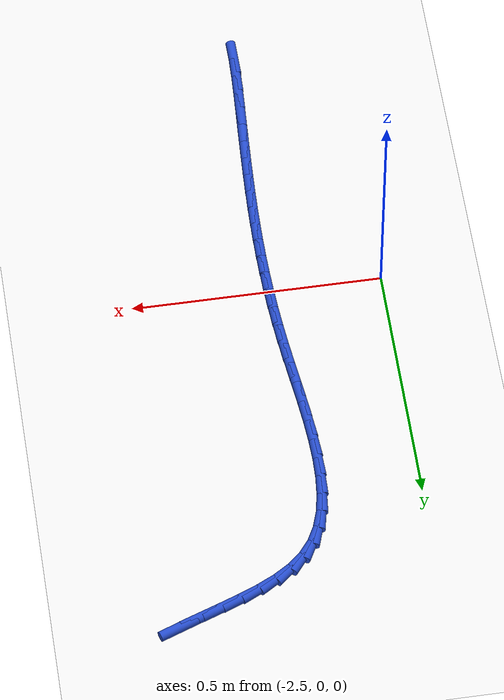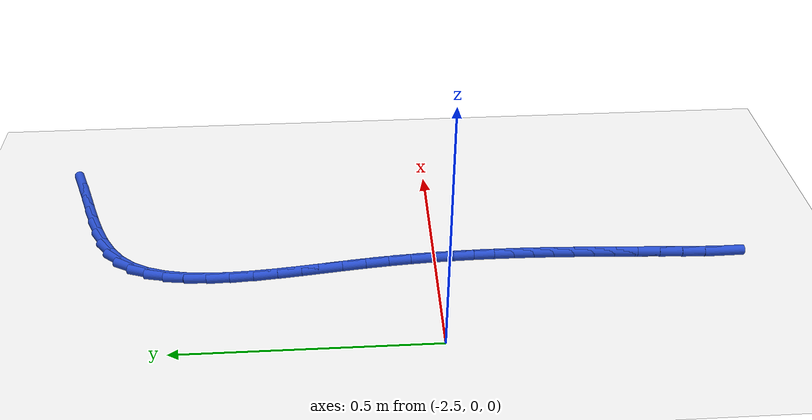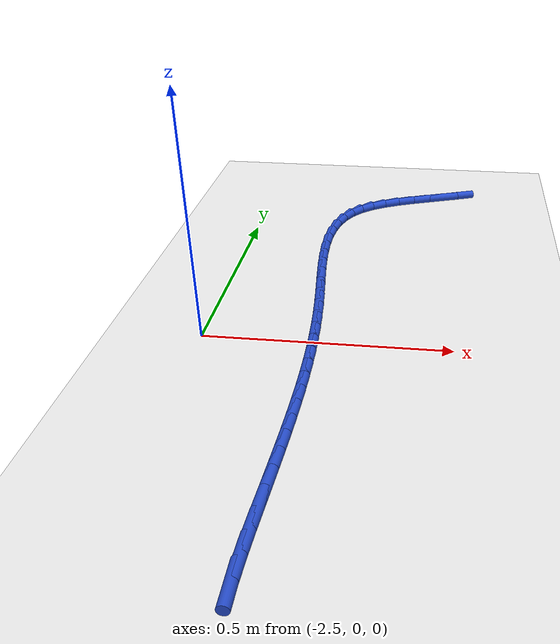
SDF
<sdf version="1.6">
 <world name="default">
  <model name="ground_plane">
   <static>1</static>
   <link name="link">
    <collision name="collision">
     <geometry><plane><normal>0 0 1</normal><size>100 100</size></plane></geometry>
     <surface><friction><ode><mu>100</mu><mu2>50</mu2></ode></friction></surface>
    </collision>
    <visual name="visual">
     <cast_shadows>0</cast_shadows>
     <geometry><plane><normal>0 0 1</normal><size>100 100</size></plane></geometry>
     <material>
      <script><uri>file://media/materials/scripts/gazebo.material</uri><name>Gazebo/WhiteGlow</name></script>
     </material>
    </visual>
   </link>
  </model>
  <model name="line">
   <link name="link_93">
    <pose>-1.9919386702595403 0.7402794051506635 0.01 0 1.57 0.3583059687442296</pose>
    <collision name="collision">
     <geometry><cylinder><radius>0.01</radius><length>0.08</length></cylinder></geometry>
    </collision>
    <visual name="visual">
     <material>
      <script><name>Gazebo/Blue</name><uri>file://media/materials/scripts/gazebo.material</uri></script>
     </material>
     <geometry><cylinder><radius>0.01</radius><length>0.08</length></cylinder></geometry>
    </visual>
   </link>
   <link name="link_94">
    <pose>-2.0347354058784446 0.7242533097601925 0.01 0 1.57 0.3448046574684909</pose>
    <collision name="collision">
     <geometry><cylinder><radius>0.01</radius><length>0.08</length></cylinder></geometry>
    </collision>
    <visual name="visual">
     <material>
      <script><name>Gazebo/Blue</name><uri>file://media/materials/scripts/gazebo.material</uri></script>
     </material>
     <geometry><cylinder><radius>0.01</radius><length>0.08</length></cylinder></geometry>
    </visual>
   </link>
   <link name="link_95">
    <pose>-2.0766841835661083 0.7091873229292416 0.01 0 1.57 0.3544680695239669</pose>
    <collision name="collision">
     <geometry><cylinder><radius>0.01</radius><length>0.08</length></cylinder></geometry>
    </collision>
    <visual name="visual">
     <material>
      <script><name>Gazebo/Blue</name><uri>file://media/materials/scripts/gazebo.material</uri></script>
     </material>
     <geometry><cylinder><radius>0.01</radius><length>0.08</length></cylinder></geometry>
    </visual>
   </link>
   <link name="link_96">
    <pose>-2.117054214678481 0.6942463654742291 0.01 0 1.57 0.39013604898697773</pose>
    <collision name="collision">
     <geometry><cylinder><radius>0.01</radius><length>0.08</length></cylinder></geometry>
    </collision>
    <visual name="visual">
     <material>
      <script><name>Gazebo/Blue</name><uri>file://media/materials/scripts/gazebo.material</uri></script>
     </material>
     <geometry><cylinder><radius>0.01</radius><length>0.08</length></cylinder></geometry>
    </visual>
   </link>
   <link name="link_97">
    <pose>-2.1551147105715165 0.678595358211574 0.01 0 1.57 0.4564500618635844</pose>
    <collision name="collision">
     <geometry><cylinder><radius>0.01</radius><length>0.08</length></cylinder></geometry>
    </collision>
    <visual name="visual">
     <material>
      <script><name>Gazebo/Blue</name><uri>file://media/materials/scripts/gazebo.material</uri></script>
     </material>
     <geometry><cylinder><radius>0.01</radius><length>0.08</length></cylinder></geometry>
    </visual>
   </link>
   <link name="link_98">
    <pose>-2.1901348826011655 0.6613992219576941 0.01 0 1.57 0.559649860873355</pose>
    <collision name="collision">
     <geometry><cylinder><radius>0.01</radius><length>0.08</length></cylinder></geometry>
    </collision>
    <visual name="visual">
     <material>
      <script><name>Gazebo/Blue</name><uri>file://media/materials/scripts/gazebo.material</uri></script>
     </material>
     <geometry><cylinder><radius>0.01</radius><length>0.08</length></cylinder></geometry>
    </visual>
   </link>
   <link name="link_99">
    <pose>-2.221383942123379 0.6418228775290078 0.01 0 1.57 0.7057201502779105</pose>
    <collision name="collision">
     <geometry><cylinder><radius>0.01</radius><length>0.08</length></cylinder></geometry>
    </collision>
    <visual name="visual">
     <material>
      <script><name>Gazebo/Blue</name><uri>file://media/materials/scripts/gazebo.material</uri></script>
     </material>
     <geometry><cylinder><radius>0.01</radius><length>0.08</length></cylinder></geometry>
    </visual>
   </link>
   <link name="link_100">
    <pose>-2.24813110049411 0.6190312457419334 0.01 0 1.57 0.8939104555666194</pose>
    <collision name="collision">
     <geometry><cylinder><radius>0.01</radius><length>0.08</length></cylinder></geometry>
    </collision>
    <visual name="visual">
     <material>
      <script><name>Gazebo/Blue</name><uri>file://media/materials/scripts/gazebo.material</uri></script>
     </material>
     <geometry><cylinder><radius>0.01</radius><length>0.08</length></cylinder></geometry>
    </visual>
   </link>
   <link name="link_101">
    <pose>-2.2696749942277497 0.5922194755579575 0.01 0 1.57 1.0871001460074077</pose>
    <collision name="collision">
     <geometry><cylinder><radius>0.01</radius><length>0.08</length></cylinder></geometry>
    </collision>
    <visual name="visual">
     <material>
      <script><name>Gazebo/Blue</name><uri>file://media/materials/scripts/gazebo.material</uri></script>
     </material>
     <geometry><cylinder><radius>0.01</radius><length>0.08</length></cylinder></geometry>
    </visual>
   </link>
   <link name="link_102">
    <pose>-2.285950825552169 0.56123665296903 0.01 0 1.57 1.249038075036579</pose>
    <collision name="collision">
     <geometry><cylinder><radius>0.01</radius><length>0.08</length></cylinder></geometry>
    </collision>
    <visual name="visual">
     <material>
      <script><name>Gazebo/Blue</name><uri>file://media/materials/scripts/gazebo.material</uri></script>
     </material>
     <geometry><cylinder><radius>0.01</radius><length>0.08</length></cylinder></geometry>
    </visual>
   </link>
   <link name="link_103">
    <pose>-2.2975087923257975 0.5265636422861057 0.01 0 1.57 1.3773636294302942</pose>
    <collision name="collision">
     <geometry><cylinder><radius>0.01</radius><length>0.08</length></cylinder></geometry>
    </collision>
    <visual name="visual">
     <material>
      <script><name>Gazebo/Blue</name><uri>file://media/materials/scripts/gazebo.material</uri></script>
     </material>
     <geometry><cylinder><radius>0.01</radius><length>0.08</length></cylinder></geometry>
    </visual>
   </link>
   <link name="link_104">
    <pose>-2.304924201941774 0.4887071025719075 0.01 0 1.57 1.4761420509970498</pose>
    <collision name="collision">
     <geometry><cylinder><radius>0.01</radius><length>0.08</length></cylinder></geometry>
    </collision>
    <visual name="visual">
     <material>
      <script><name>Gazebo/Blue</name><uri>file://media/materials/scripts/gazebo.material</uri></script>
     </material>
     <geometry><cylinder><radius>0.01</radius><length>0.08</length></cylinder></geometry>
    </visual>
   </link>
   <link name="link_105">
    <pose>-2.3087723617932356 0.4481736928891597 0.01 0 1.57 1.5507487814240661</pose>
    <collision name="collision">
     <geometry><cylinder><radius>0.01</radius><length>0.08</length></cylinder></geometry>
    </collision>
    <visual name="visual">
     <material>
      <script><name>Gazebo/Blue</name><uri>file://media/materials/scripts/gazebo.material</uri></script>
     </material>
     <geometry><cylinder><radius>0.01</radius><length>0.08</length></cylinder></geometry>
    </visual>
   </link>
   <link name="link_106">
    <pose>-2.309628579273322 0.405470072300585 0.01 0 1.57 -1.535640275715617</pose>
    <collision name="collision">
     <geometry><cylinder><radius>0.01</radius><length>0.08</length></cylinder></geometry>
    </collision>
    <visual name="visual">
     <material>
      <script><name>Gazebo/Blue</name><uri>file://media/materials/scripts/gazebo.material</uri></script>
     </material>
     <geometry><cylinder><radius>0.01</radius><length>0.08</length></cylinder></geometry>
    </visual>
   </link>
   <link name="link_107">
    <pose>-2.3080681617751706 0.36110289986890787 0.01 0 1.57 -1.4962108353072543</pose>
    <collision name="collision">
     <geometry><cylinder><radius>0.01</radius><length>0.08</length></cylinder></geometry>
    </collision>
    <visual name="visual">
     <material>
      <script><name>Gazebo/Blue</name><uri>file://media/materials/scripts/gazebo.material</uri></script>
     </material>
     <geometry><cylinder><radius>0.01</radius><length>0.08</length></cylinder></geometry>
    </visual>
   </link>
   <link name="link_108">
    <pose>-2.3046664166919193 0.31557883465685094 0.01 0 1.57 -1.4700484675700716</pose>
    <collision name="collision">
     <geometry><cylinder><radius>0.01</radius><length>0.08</length></cylinder></geometry>
    </collision>
    <visual name="visual">
     <material>
      <script><name>Gazebo/Blue</name><uri>file://media/materials/scripts/gazebo.material</uri></script>
     </material>
     <geometry><cylinder><radius>0.01</radius><length>0.08</length></cylinder></geometry>
    </visual>
   </link>
   <link name="link_109">
    <pose>-2.2999986514167077 0.2694045357271387 0.01 0 1.57 -1.455619141936522</pose>
    <collision name="collision">
     <geometry><cylinder><radius>0.01</radius><length>0.08</length></cylinder></geometry>
    </collision>
    <visual name="visual">
     <material>
      <script><name>Gazebo/Blue</name><uri>file://media/materials/scripts/gazebo.material</uri></script>
     </material>
     <geometry><cylinder><radius>0.01</radius><length>0.08</length></cylinder></geometry>
    </visual>
   </link>
   <link name="link_110">
    <pose>-2.294640173342673 0.22308666214249367 0.01 0 1.57 -1.4522403843897254</pose>
    <collision name="collision">
     <geometry><cylinder><radius>0.01</radius><length>0.08</length></cylinder></geometry>
    </collision>
    <visual name="visual">
     <material>
      <script><name>Gazebo/Blue</name><uri>file://media/materials/scripts/gazebo.material</uri></script>
     </material>
     <geometry><cylinder><radius>0.01</radius><length>0.08</length></cylinder></geometry>
    </visual>
   </link>
   <link name="link_111">
    <pose>-2.289166289862955 0.17713187296564062 0.01 0 1.57 -1.4600312226867516</pose>
    <collision name="collision">
     <geometry><cylinder><radius>0.01</radius><length>0.08</length></cylinder></geometry>
    </collision>
    <visual name="visual">
     <material>
      <script><name>Gazebo/Blue</name><uri>file://media/materials/scripts/gazebo.material</uri></script>
     </material>
     <geometry><cylinder><radius>0.01</radius><length>0.08</length></cylinder></geometry>
    </visual>
   </link>
   <link name="link_112">
    <pose>-2.284151863925909 0.13204635612402604 0.01 0 1.57 -1.4766299716597</pose>
    <collision name="collision">
     <geometry><cylinder><radius>0.01</radius><length>0.08</length></cylinder></geometry>
    </collision>
    <visual name="visual">
     <material>
      <script><name>Gazebo/Blue</name><uri>file://media/materials/scripts/gazebo.material</uri></script>
     </material>
     <geometry><cylinder><radius>0.01</radius><length>0.08</length></cylinder></geometry>
    </visual>
   </link>
   <link name="link_113">
    <pose>-2.2800071585937687 0.08816181484856449 0.01 0 1.57 -1.494410431124753</pose>
    <collision name="collision">
     <geometry><cylinder><radius>0.01</radius><length>0.08</length></cylinder></geometry>
    </collision>
    <visual name="visual">
     <material>
      <script><name>Gazebo/Blue</name><uri>file://media/materials/scripts/gazebo.material</uri></script>
     </material>
     <geometry><cylinder><radius>0.01</radius><length>0.08</length></cylinder></geometry>
    </visual>
   </link>
   <link name="link_114">
    <pose>-2.2767325090365174 0.04537540684547859 0.01 0 1.57 -1.5119263965669993</pose>
    <collision name="collision">
     <geometry><cylinder><radius>0.01</radius><length>0.08</length></cylinder></geometry>
    </collision>
    <visual name="visual">
     <material>
      <script><name>Gazebo/Blue</name><uri>file://media/materials/scripts/gazebo.material</uri></script>
     </material>
     <geometry><cylinder><radius>0.01</radius><length>0.08</length></cylinder></geometry>
    </visual>
   </link>
   <link name="link_115">
    <pose>-2.2742655024896177 0.003517773649139571 0.01 0 1.57 -1.5289266258049818</pose>
    <collision name="collision">
     <geometry><cylinder><radius>0.01</radius><length>0.08</length></cylinder></geometry>
    </collision>
    <visual name="visual">
     <material>
      <script><name>Gazebo/Blue</name><uri>file://media/materials/scripts/gazebo.material</uri></script>
     </material>
     <geometry><cylinder><radius>0.01</radius><length>0.08</length></cylinder></geometry>
    </visual>
   </link>
   <link name="link_116">
    <pose>-2.272543726188535 -0.03758044320608448 0.01 0 1.57 -1.5451538113739467</pose>
    <collision name="collision">
     <geometry><cylinder><radius>0.01</radius><length>0.08</length></cylinder></geometry>
    </collision>
    <visual name="visual">
     <material>
      <script><name>Gazebo/Blue</name><uri>file://media/materials/scripts/gazebo.material</uri></script>
     </material>
     <geometry><cylinder><radius>0.01</radius><length>0.08</length></cylinder></geometry>
    </visual>
   </link>
   <link name="link_117">
    <pose>-2.2715047673687314 -0.07808860218582442 0.01 0 1.57 -1.560355682788257</pose>
    <collision name="collision">
     <geometry><cylinder><radius>0.01</radius><length>0.08</length></cylinder></geometry>
    </collision>
    <visual name="visual">
     <material>
      <script><name>Gazebo/Blue</name><uri>file://media/materials/scripts/gazebo.material</uri></script>
     </material>
     <geometry><cylinder><radius>0.01</radius><length>0.08</length></cylinder></geometry>
    </visual>
   </link>
   <link name="link_118">
    <pose>-2.271086213265672 -0.11817606175571213 0.01 0 1.57 1.5672960540650596</pose>
    <collision name="collision">
     <geometry><cylinder><radius>0.01</radius><length>0.08</length></cylinder></geometry>
    </collision>
    <visual name="visual">
     <material>
      <script><name>Gazebo/Blue</name><uri>file://media/materials/scripts/gazebo.material</uri></script>
     </material>
     <geometry><cylinder><radius>0.01</radius><length>0.08</length></cylinder></geometry>
    </visual>
   </link>
   <link name="link_119">
    <pose>-2.2712256511148206 -0.15801218038137643 0.01 0 1.57 1.5548240759270102</pose>
    <collision name="collision">
     <geometry><cylinder><radius>0.01</radius><length>0.08</length></cylinder></geometry>
    </collision>
    <visual name="visual">
     <material>
      <script><name>Gazebo/Blue</name><uri>file://media/materials/scripts/gazebo.material</uri></script>
     </material>
     <geometry><cylinder><radius>0.01</radius><length>0.08</length></cylinder></geometry>
    </visual>
   </link>
   <link name="link_120">
    <pose>-2.2718606681516404 -0.19776631652844928 0.01 0 1.57 1.5439919318497881</pose>
    <collision name="collision">
     <geometry><cylinder><radius>0.01</radius><length>0.08</length></cylinder></geometry>
    </collision>
    <visual name="visual">
     <material>
      <script><name>Gazebo/Blue</name><uri>file://media/materials/scripts/gazebo.material</uri></script>
     </material>
     <geometry><cylinder><radius>0.01</radius><length>0.08</length></cylinder></geometry>
    </visual>
   </link>
   <link name="link_121">
    <pose>-2.2729288516115944 -0.23760782866256147 0.01 0 1.57 1.5349264309224384</pose>
    <collision name="collision">
     <geometry><cylinder><radius>0.01</radius><length>0.08</length></cylinder></geometry>
    </collision>
    <visual name="visual">
     <material>
      <script><name>Gazebo/Blue</name><uri>file://media/materials/scripts/gazebo.material</uri></script>
     </material>
     <geometry><cylinder><radius>0.01</radius><length>0.08</length></cylinder></geometry>
    </visual>
   </link>
   <link name="link_122">
    <pose>-2.274367788730147 -0.27770607524934476 0.01 0 1.57 1.5277062609634828</pose>
    <collision name="collision">
     <geometry><cylinder><radius>0.01</radius><length>0.08</length></cylinder></geometry>
    </collision>
    <visual name="visual">
     <material>
      <script><name>Gazebo/Blue</name><uri>file://media/materials/scripts/gazebo.material</uri></script>
     </material>
     <geometry><cylinder><radius>0.01</radius><length>0.08</length></cylinder></geometry>
    </visual>
   </link>
   <link name="link_123">
    <pose>-2.2761150667427628 -0.31823041475442815 0.01 0 1.57 1.5223610797790772</pose>
    <collision name="collision">
     <geometry><cylinder><radius>0.01</radius><length>0.08</length></cylinder></geometry>
    </collision>
    <visual name="visual">
     <material>
      <script><name>Gazebo/Blue</name><uri>file://media/materials/scripts/gazebo.material</uri></script>
     </material>
     <geometry><cylinder><radius>0.01</radius><length>0.08</length></cylinder></geometry>
    </visual>
   </link>
   <link name="link_124">
    <pose>-2.278108272884905 -0.35935020564344367 0.01 0 1.57 1.5188735440078547</pose>
    <collision name="collision">
     <geometry><cylinder><radius>0.01</radius><length>0.08</length></cylinder></geometry>
    </collision>
    <visual name="visual">
     <material>
      <script><name>Gazebo/Blue</name><uri>file://media/materials/scripts/gazebo.material</uri></script>
     </material>
     <geometry><cylinder><radius>0.01</radius><length>0.08</length></cylinder></geometry>
    </visual>
   </link>
   <link name="link_125">
    <pose>-2.2802849943920367 -0.40123480638202186 0.01 0 1.57 1.5171838061818812</pose>
    <collision name="collision">
     <geometry><cylinder><radius>0.01</radius><length>0.08</length></cylinder></geometry>
    </collision>
    <visual name="visual">
     <material>
      <script><name>Gazebo/Blue</name><uri>file://media/materials/scripts/gazebo.material</uri></script>
     </material>
     <geometry><cylinder><radius>0.01</radius><length>0.08</length></cylinder></geometry>
    </visual>
   </link>
   <link name="link_126">
    <pose>-2.2825828184996224 -0.4440535754357947 0.01 0 1.57 1.5180441810834422</pose>
    <collision name="collision">
     <geometry><cylinder><radius>0.01</radius><length>0.08</length></cylinder></geometry>
    </collision>
    <visual name="visual">
     <material>
      <script><name>Gazebo/Blue</name><uri>file://media/materials/scripts/gazebo.material</uri></script>
     </material>
     <geometry><cylinder><radius>0.01</radius><length>0.08</length></cylinder></geometry>
    </visual>
   </link>
   <link name="link_127">
    <pose>-2.284899236253098 -0.48792418246064856 0.01 0 1.57 1.5280235332410017</pose>
    <collision name="collision">
     <geometry><cylinder><radius>0.01</radius><length>0.08</length></cylinder></geometry>
    </collision>
    <visual name="visual">
     <material>
      <script><name>Gazebo/Blue</name><uri>file://media/materials/scripts/gazebo.material</uri></script>
     </material>
     <geometry><cylinder><radius>0.01</radius><length>0.08</length></cylinder></geometry>
    </visual>
   </link>
   <link name="link_128">
    <pose>-2.286809102714905 -0.5325483805396014 0.01 0 1.57 1.5502419243481258</pose>
    <collision name="collision">
     <geometry><cylinder><radius>0.01</radius><length>0.08</length></cylinder></geometry>
    </collision>
    <visual name="visual">
     <material>
      <script><name>Gazebo/Blue</name><uri>file://media/materials/scripts/gazebo.material</uri></script>
     </material>
     <geometry><cylinder><radius>0.01</radius><length>0.08</length></cylinder></geometry>
    </visual>
   </link>
   <link name="link_129">
    <pose>-2.287731693288649 -0.5774273618699639 0.01 0 1.57 -1.5563147251232745</pose>
    <collision name="collision">
     <geometry><cylinder><radius>0.01</radius><length>0.08</length></cylinder></geometry>
    </collision>
    <visual name="visual">
     <material>
      <script><name>Gazebo/Blue</name><uri>file://media/materials/scripts/gazebo.material</uri></script>
     </material>
     <geometry><cylinder><radius>0.01</radius><length>0.08</length></cylinder></geometry>
    </visual>
   </link>
  </model>
 </world>
</sdf>
